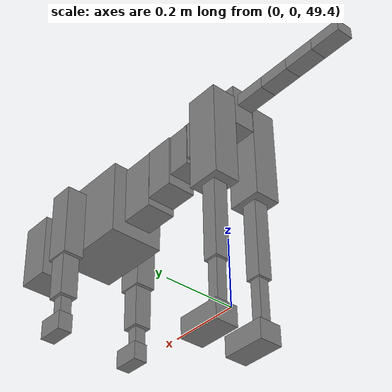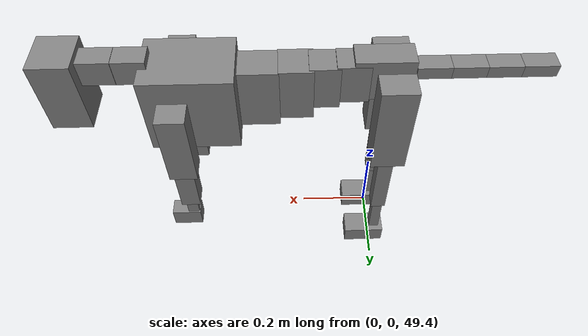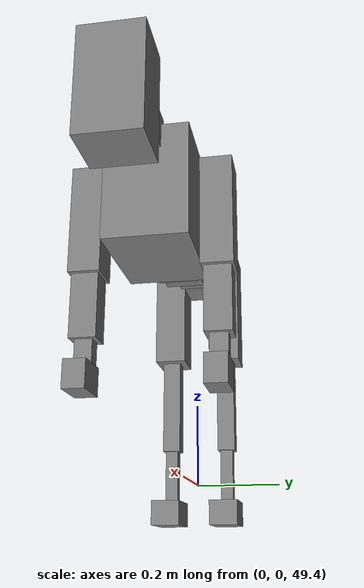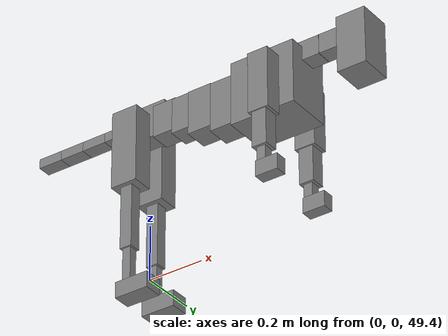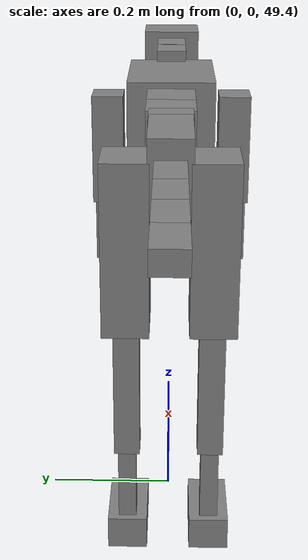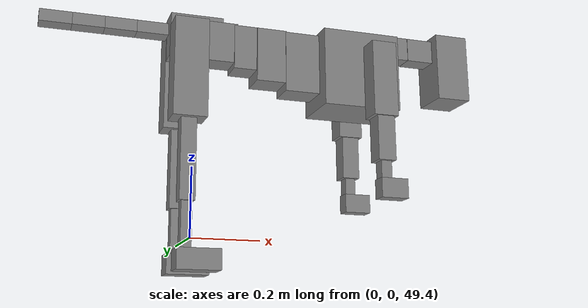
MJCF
<mujoco model="dog">

    <default>
        <joint armature="0.02" stiffness="1" damping="0.2" limited="true"/>
        <geom condim="3" friction="1 0.05 0.05" margin="0.01"/>
        <motor ctrllimited="true" ctrlrange="-1.0 1.0" forcelimited="true" gear="50"/>
    </default>

    <compiler inertiafromgeom="true" angle="radian"/>

    <option timestep="0.016" iterations="50" tolerance="1e-10" solver="Newton" jacobian="dense" cone="pyramidal"/>

    <size nconmax="20000" njmax="60000" nstack="5000000"/>
    <visual>
        <map force="0.1" zfar="30"/>
        <rgba haze="0.15 0.25 0.35 1"/>
        <quality shadowsize="2048"/>
        <global offwidth="800" offheight="800"/>
    </visual>

    <asset>
        <texture type="skybox" builtin="gradient" rgb1="0.3 0.5 0.7" rgb2="0 0 0" width="512" height="512"/>
        <texture name="texplane" type="2d" builtin="checker" rgb1=".2 .3 .4" rgb2=".1 0.15 0.2" width="512" height="512"
                 mark="cross" markrgb=".8 .8 .8"/>
        <texture name="texgeom" type="cube" builtin="flat" mark="cross" width="127" height="1278" rgb1="0.8 0.6 0.4"
                 rgb2="0.8 0.6 0.4" markrgb="1 1 1" random="0.01"/>

        <material name="matplane" reflectance="0.3" texture="texplane" texrepeat="1 1" texuniform="true"/>
        <material name="matgeom" texture="texgeom" texuniform="true" rgba="0.8 0.6 .4 1"/>
    </asset>

    <worldbody>
        <geom name="floor" pos="0 0 0" size="0 0 .25" type="plane" material="matplane" condim="3"/>

        <light directional="false" diffuse=".2 .2 .2" specular="0 0 0" pos="0 0 5" dir="0 0 -1" castshadow="false"/>
        <light mode="targetbodycom" target="torso" directional="false" diffuse=".8 .8 .8" specular="0.3 0.3 0.3"
               pos="0 0 4.0" dir="0 0 -1"/>

        <body name="root" pos="0 0 50">
            <freejoint name="root_1"/>
            <geom type="box" pos="0 0 -0.02" size="0.0774  0.0358  0.063" density="2030"/>

            <body name="spine1" pos="0.054 0 0">
                <joint name="spine1_y" axis="0 1 0" range="0 0.7" limited="true"/>
                <geom type="box" pos="0.02375 0 -0.03" size="0.04375  0.0375  0.05985" density="2030"/>

                <body name="spine2" pos="0.0612 0 0">
                    <joint name="spine2_y" axis="0 1 0" range="-0.15 0.15" limited="true"/>
                    <geom type="box" pos="0.03555  0  -0.04" size="0.04055  0.039  0.06615" density="2030"/>

                    <body name="spine3" pos="0.0730 0 0">
                        <joint name="spine3_y" axis="0 1 0" range="-0.15 0.15" limited="true"/>
                        <geom type="box" pos="0.03555  0  -0.057" size="0.04555  0.0445  0.081" density="2030"/>

                        <body name="spine4" pos="0.0780 0 0">
                            <joint name="spine4_y" axis="0 1 0" range="-0.15 0.15" limited="true"/>
                            <geom type="box" pos="0.05265  0  -0.07" size="0.05265  0.045  0.09135" density="2030"/>

                            <body name="torso" pos="0.1082 0 0">
                                <joint name="torso_y" axis="0 1 0" range="-0.15 0.15" limited="true"/>
                                <geom type="box" pos="0.11925  0  -0.085" size="0.11925  0.085  0.11745"
                                      density="2030"/>

                                <body name="neck1" pos="0.2160  0   0.0180">
                                    <joint name="neck1_y" axis="0 1 0" range="-1.2  -1" limited="true"/>
                                    <geom type="box" pos="0.0423  0  0" size="0.0423  0.03  0.036" density="2325"/>

                                    <body name="neck2" pos="0.0853  0  0">
                                        <joint name="neck2_y" axis="0 1 0" range="0.1  0" limited="true"/>
                                        <geom type="box" pos="0.0423  0  0" size="0.0423  0.03  0.036" density="2325"/>

                                        <body name="head" pos="0.0853  0  0">
                                            <joint name="head_y" axis="0 1 0" range="-0.3  -0.2" limited="true"/>
                                            <geom type="box" pos="0.0531  0  -0.055" size="0.0531  0.06  0.1044"
                                                  density="4030"/>

                                        </body>
                                    </body>
                                </body>

                                <body name="front_shoulder" pos="0.156  0   -0.0480">
                                    <joint name="front_shoulder_y" axis="0 1 0" range="-1 1.5" limited="true"/>
                                    <geom type="box" pos="0 0.13 -0.0855" size="0.0374  0.0320  0.1122" density="1158"/>
                                    <geom type="box" pos="0 -0.13 -0.0855" size="0.0374  0.0320  0.1122"
                                          density="1158"/>

                                    <body name="front_elbow" pos="0  0  -0.1711">
                                        <joint name="front_elbow_y" axis="0 1 0" range="-2 0" limited="true"/>
                                        <geom type="box" pos="0 0.13 -0.0787" size="0.0266  0.0272  0.0787"
                                              density="1081"/>
                                        <geom type="box" pos="0 -0.13 -0.0787" size="0.0266  0.0272  0.0787"
                                              density="1081"/>

                                        <body name="front_wrist" pos="0  0  -0.1574">
                                            <joint name="front_wrist_y" axis="0 1 0" range="-0.2 0" limited="true"/>
                                            <geom type="box" pos="0 0.13 -0.0327" size="0.0160  0.0178  0.0458"
                                                  density="1664"/>
                                            <geom type="box" pos="0 -0.13 -0.0327" size="0.0160  0.0178  0.0458"
                                                  density="1664"/>

                                            <body name="front_finger_end" pos="0  0  -0.0653">
                                                <joint name="front_finger_y" axis="0 1 0" range="-0.4 1"
                                                       limited="true"/>
                                                <geom type="box" pos="0.0222  0.13  -0.0133"
                                                      size="0.0407  0.0222  0.0283" density="1515"/>
                                                <geom type="box" pos="0.0222  -0.13  -0.0133"
                                                      size="0.0407  0.0222  0.0283" density="1515"/>

                                            </body>

                                        </body>
                                    </body>
                                </body>

                            </body>
                        </body>
                    </body>
                </body>
            </body>

            <body name="back_hip" pos="-0.03 0 -0.018">
                <joint name="back_hip_y" axis="0 1 0" range="-1.5 0.3" limited="true"/>
                <geom type="box" pos="0 0.07 -0.1205" size="0.0486  0.0381  0.1433" density="1154"/>
                <geom type="box" pos="0 -0.07 -0.1205" size="0.0486  0.0381  0.1433" density="1154"/>

                <body name="back_knee" pos="0  0  -0.2410">
                    <joint name="back_knee_y" axis="0 1 0" range="0 2.8" limited="true"/>
                    <geom type="box" pos="0 0.07 -0.1183" size="0.0219  0.0215  0.1339" density="1227"/>
                    <geom type="box" pos="0 -0.07 -0.1183" size="0.0219  0.0215  0.1339" density="1227"/>

                    <body name="back_ankle" pos="0  0  -0.2367">
                        <joint name="back_ankle_y" axis="0 1 0" range="-2.2 0" limited="true"/>
                        <geom type="box" pos="0 0.07 -0.0790" size="0.0152  0.0152  0.0902" density="1284"/>
                        <geom type="box" pos="0 -0.07 -0.0790" size="0.0152  0.0152  0.0902" density="1284"/>

                        <body name="back_toe_end" pos="0  0  -0.1579">
                            <joint name="back_toe_y" axis="0 1 0" range="-0.4 1" limited="true"/>
                            <geom type="box" pos="0.0335  0.07  -0.0137" size="0.0614  0.0335  0.0287" density="1515"/>
                            <geom type="box" pos="0.0335  -0.07  -0.0137" size="0.0614  0.0335  0.0287" density="1515"/>

                        </body>
                    </body>
                </body>
            </body>

            <body name="tail1" pos="-0.074 0 -0.006">
                <joint name="tail1_y" axis="0 1 0" range="-0.2 0.2" limited="true"/>
                <geom type="box" pos="-0.0536  0  0" size="0.045  0.025  0.0175" density="1587"/>

                <body name="tail2" pos="-0.09 0 0">
                    <joint name="tail2_y" axis="0 1 0" range="-0.2 0.2" limited="true"/>
                    <geom type="box" pos="-0.0536  0  0" size="0.045  0.025  0.0175" density="1587"/>

                    <body name="tail3" pos="-0.09 0 0">
                        <joint name="tail3_y" axis="0 1 0" range="-0.2 0.2" limited="true"/>
                        <geom type="box" pos="-0.0536  0  0" size="0.045  0.025  0.0175" density="1587"/>

                        <body name="tail4" pos="-0.09 0 0">
                            <joint name="tail4_y" axis="0 1 0" range="-0.2 0.2" limited="true"/>
                            <geom type="box" pos="-0.0536  0  0" size="0.045  0.025  0.0175" density="1587"/>

                        </body>
                    </body>
                </body>
            </body>
        </body>
    </worldbody>

    <actuator>
        <motor joint="spine1_y" forcerange="-150 150     "/>
        <motor joint="spine2_y" forcerange="-150 150     "/>
        <motor joint="spine3_y" forcerange="-150 150     "/>
        <motor joint="spine4_y" forcerange="-150 150     "/>
        <motor joint="torso_y" forcerange="-150 150     "/>
        <motor joint="neck1_y" forcerange="-100 100       "/>
        <motor joint="neck2_y" forcerange="-100 100       "/>
        <motor joint="head_y" forcerange="-150 150       "/>
        <motor joint="front_shoulder_y" forcerange="-158.95 154.14"/>
        <motor joint="front_elbow_y" forcerange="-138.11 159.43"/>
        <motor joint="front_wrist_y" forcerange="-82.77 59.57"/>
        <motor joint="front_finger_y" forcerange="-22.11 56.26"/>
        <motor joint="back_hip_y" forcerange="-334.05 374.60"/>
        <motor joint="back_knee_y" forcerange="-303.58 209.88"/>
        <motor joint="back_angle_y" forcerange="-64.47 79.48"/>
        <motor joint="back_toe_y" forcerange="-70.18 117.66"/>
        <motor joint="tail1_y" forcerange="-50 50     "/>
        <motor joint="tail2_y" forcerange="-50 50     "/>
        <motor joint="tail3_y" forcerange="-50 50     "/>
        <motor joint="tail4_y" forcerange="-50 50     "/>
    </actuator>
</mujoco>
